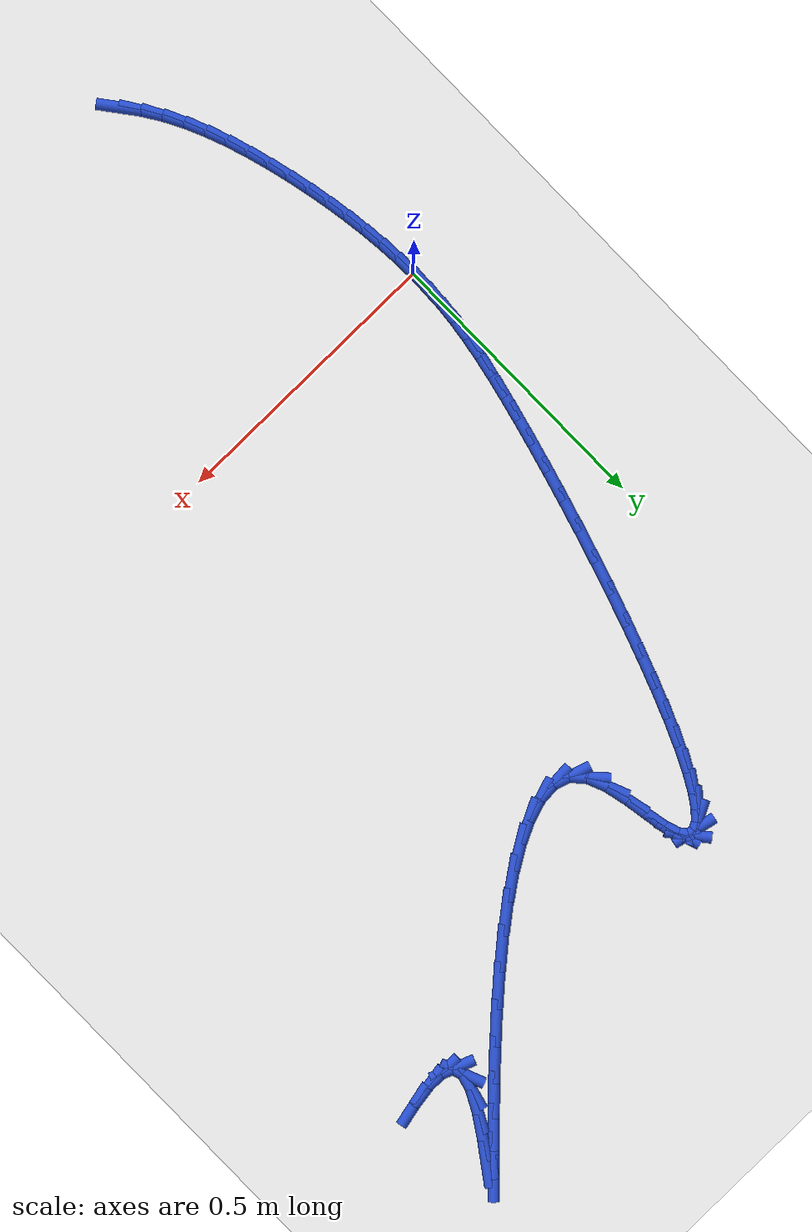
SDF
<sdf version="1.6">
 <world name="default">
  <model name="ground_plane">
   <static>1</static>
   <link name="link">
    <collision name="collision">
     <geometry><plane><normal>0 0 1</normal><size>100 100</size></plane></geometry>
     <surface><friction><ode><mu>100</mu><mu2>50</mu2></ode></friction></surface>
    </collision>
    <visual name="visual">
     <cast_shadows>0</cast_shadows>
     <geometry><plane><normal>0 0 1</normal><size>100 100</size></plane></geometry>
     <material>
      <script><uri>file://media/materials/scripts/gazebo.material</uri><name>Gazebo/WhiteGlow</name></script>
     </material>
    </visual>
   </link>
  </model>
  <model name="line">
   <link name="link_0">
    <pose>-1.1275702593849246e-17 2.7755575615628914e-17 0.01 0 1.57 1.5615434562124908</pose>
    <collision name="collision">
     <geometry><cylinder><radius>0.01</radius><length>0.08</length></cylinder></geometry>
    </collision>
    <visual name="visual">
     <material>
      <script><name>Gazebo/Blue</name><uri>file://media/materials/scripts/gazebo.material</uri></script>
     </material>
     <geometry><cylinder><radius>0.01</radius><length>0.08</length></cylinder></geometry>
    </visual>
   </link>
   <link name="link_1">
    <pose>0.00032071212133747757 0.03465983510457822 0.01 0 1.57 1.5175648516688518</pose>
    <collision name="collision">
     <geometry><cylinder><radius>0.01</radius><length>0.08</length></cylinder></geometry>
    </collision>
    <visual name="visual">
     <material>
      <script><name>Gazebo/Blue</name><uri>file://media/materials/scripts/gazebo.material</uri></script>
     </material>
     <geometry><cylinder><radius>0.01</radius><length>0.08</length></cylinder></geometry>
    </visual>
   </link>
   <link name="link_2">
    <pose>0.0021454302282572194 0.06890638333522675 0.01 0 1.57 1.4738721594035114</pose>
    <collision name="collision">
     <geometry><cylinder><radius>0.01</radius><length>0.08</length></cylinder></geometry>
    </collision>
    <visual name="visual">
     <material>
      <script><name>Gazebo/Blue</name><uri>file://media/materials/scripts/gazebo.material</uri></script>
     </material>
     <geometry><cylinder><radius>0.01</radius><length>0.08</length></cylinder></geometry>
    </visual>
   </link>
   <link name="link_3">
    <pose>0.005502948103826773 0.10343850817212616 0.01 0 1.57 1.4331699964217521</pose>
    <collision name="collision">
     <geometry><cylinder><radius>0.01</radius><length>0.08</length></cylinder></geometry>
    </collision>
    <visual name="visual">
     <material>
      <script><name>Gazebo/Blue</name><uri>file://media/materials/scripts/gazebo.material</uri></script>
     </material>
     <geometry><cylinder><radius>0.01</radius><length>0.08</length></cylinder></geometry>
    </visual>
   </link>
   <link name="link_4">
    <pose>0.010422059531113696 0.13895507309545704 0.01 0 1.57 1.3975631338886407</pose>
    <collision name="collision">
     <geometry><cylinder><radius>0.01</radius><length>0.08</length></cylinder></geometry>
    </collision>
    <visual name="visual">
     <material>
      <script><name>Gazebo/Blue</name><uri>file://media/materials/scripts/gazebo.material</uri></script>
     </material>
     <geometry><cylinder><radius>0.01</radius><length>0.08</length></cylinder></geometry>
    </visual>
   </link>
   <link name="link_5">
    <pose>0.016931558293185545 0.1761549415853999 0.01 0 1.57 1.3682495324275081</pose>
    <collision name="collision">
     <geometry><cylinder><radius>0.01</radius><length>0.08</length></cylinder></geometry>
    </collision>
    <visual name="visual">
     <material>
      <script><name>Gazebo/Blue</name><uri>file://media/materials/scripts/gazebo.material</uri></script>
     </material>
     <geometry><cylinder><radius>0.01</radius><length>0.08</length></cylinder></geometry>
    </visual>
   </link>
   <link name="link_6">
    <pose>0.025060238173109865 0.21573697712213524 0.01 0 1.57 1.3455261808817527</pose>
    <collision name="collision">
     <geometry><cylinder><radius>0.01</radius><length>0.08</length></cylinder></geometry>
    </collision>
    <visual name="visual">
     <material>
      <script><name>Gazebo/Blue</name><uri>file://media/materials/scripts/gazebo.material</uri></script>
     </material>
     <geometry><cylinder><radius>0.01</radius><length>0.08</length></cylinder></geometry>
    </visual>
   </link>
   <link name="link_7">
    <pose>0.034836892953954215 0.2584000431858437 0.01 0 1.57 1.3289492586308602</pose>
    <collision name="collision">
     <geometry><cylinder><radius>0.01</radius><length>0.08</length></cylinder></geometry>
    </collision>
    <visual name="visual">
     <material>
      <script><name>Gazebo/Blue</name><uri>file://media/materials/scripts/gazebo.material</uri></script>
     </material>
     <geometry><cylinder><radius>0.01</radius><length>0.08</length></cylinder></geometry>
    </visual>
   </link>
   <link name="link_8">
    <pose>0.046286000577976216 0.3048137250771371 0.01 0 1.57 1.3162398495861478</pose>
    <collision name="collision">
     <geometry><cylinder><radius>0.01</radius><length>0.08</length></cylinder></geometry>
    </collision>
    <visual name="visual">
     <material>
      <script><name>Gazebo/Blue</name><uri>file://media/materials/scripts/gazebo.material</uri></script>
     </material>
     <geometry><cylinder><radius>0.01</radius><length>0.08</length></cylinder></geometry>
    </visual>
   </link>
   <link name="link_9">
    <pose>0.059326184572193526 0.3549295036266064 0.01 0 1.57 1.3049176117603984</pose>
    <collision name="collision">
     <geometry><cylinder><radius>0.01</radius><length>0.08</length></cylinder></geometry>
    </collision>
    <visual name="visual">
     <material>
      <script><name>Gazebo/Blue</name><uri>file://media/materials/scripts/gazebo.material</uri></script>
     </material>
     <geometry><cylinder><radius>0.01</radius><length>0.08</length></cylinder></geometry>
    </visual>
   </link>
   <link name="link_10">
    <pose>0.07376641805515838 0.4079550036029085 0.01 0 1.57 1.294193274917039</pose>
    <collision name="collision">
     <geometry><cylinder><radius>0.01</radius><length>0.08</length></cylinder></geometry>
    </collision>
    <visual name="visual">
     <material>
      <script><name>Gazebo/Blue</name><uri>file://media/materials/scripts/gazebo.material</uri></script>
     </material>
     <geometry><cylinder><radius>0.01</radius><length>0.08</length></cylinder></geometry>
    </visual>
   </link>
   <link name="link_11">
    <pose>0.0894105988105263 0.4630634192725063 0.01 0 1.57 1.2835333036569392</pose>
    <collision name="collision">
     <geometry><cylinder><radius>0.01</radius><length>0.08</length></cylinder></geometry>
    </collision>
    <visual name="visual">
     <material>
      <script><name>Gazebo/Blue</name><uri>file://media/materials/scripts/gazebo.material</uri></script>
     </material>
     <geometry><cylinder><radius>0.01</radius><length>0.08</length></cylinder></geometry>
    </visual>
   </link>
   <link name="link_12">
    <pose>0.10606262462195287 0.519427944901863 0.01 0 1.57 1.272478453742747</pose>
    <collision name="collision">
     <geometry><cylinder><radius>0.01</radius><length>0.08</length></cylinder></geometry>
    </collision>
    <visual name="visual">
     <material>
      <script><name>Gazebo/Blue</name><uri>file://media/materials/scripts/gazebo.material</uri></script>
     </material>
     <geometry><cylinder><radius>0.01</radius><length>0.08</length></cylinder></geometry>
    </visual>
   </link>
   <link name="link_13">
    <pose>0.12352639327309364 0.5762217747574414 0.01 0 1.57 1.260569366674199</pose>
    <collision name="collision">
     <geometry><cylinder><radius>0.01</radius><length>0.08</length></cylinder></geometry>
    </collision>
    <visual name="visual">
     <material>
      <script><name>Gazebo/Blue</name><uri>file://media/materials/scripts/gazebo.material</uri></script>
     </material>
     <geometry><cylinder><radius>0.01</radius><length>0.08</length></cylinder></geometry>
    </visual>
   </link>
   <link name="link_14">
    <pose>0.14160580254760402 0.6326181031057043 0.01 0 1.57 1.24728058162358</pose>
    <collision name="collision">
     <geometry><cylinder><radius>0.01</radius><length>0.08</length></cylinder></geometry>
    </collision>
    <visual name="visual">
     <material>
      <script><name>Gazebo/Blue</name><uri>file://media/materials/scripts/gazebo.material</uri></script>
     </material>
     <geometry><cylinder><radius>0.01</radius><length>0.08</length></cylinder></geometry>
    </visual>
   </link>
   <link name="link_15">
    <pose>0.16010475022913975 0.6877901242131153 0.01 0 1.57 1.2319418918140035</pose>
    <collision name="collision">
     <geometry><cylinder><radius>0.01</radius><length>0.08</length></cylinder></geometry>
    </collision>
    <visual name="visual">
     <material>
      <script><name>Gazebo/Blue</name><uri>file://media/materials/scripts/gazebo.material</uri></script>
     </material>
     <geometry><cylinder><radius>0.01</radius><length>0.08</length></cylinder></geometry>
    </visual>
   </link>
   <link name="link_16">
    <pose>0.17882713410135623 0.7409110323461364 0.01 0 1.57 1.2136215446589431</pose>
    <collision name="collision">
     <geometry><cylinder><radius>0.01</radius><length>0.08</length></cylinder></geometry>
    </collision>
    <visual name="visual">
     <material>
      <script><name>Gazebo/Blue</name><uri>file://media/materials/scripts/gazebo.material</uri></script>
     </material>
     <geometry><cylinder><radius>0.01</radius><length>0.08</length></cylinder></geometry>
    </visual>
   </link>
   <link name="link_17">
    <pose>0.197576851947909 0.7911540217712314 0.01 0 1.57 1.1909265250723264</pose>
    <collision name="collision">
     <geometry><cylinder><radius>0.01</radius><length>0.08</length></cylinder></geometry>
    </collision>
    <visual name="visual">
     <material>
      <script><name>Gazebo/Blue</name><uri>file://media/materials/scripts/gazebo.material</uri></script>
     </material>
     <geometry><cylinder><radius>0.01</radius><length>0.08</length></cylinder></geometry>
    </visual>
   </link>
   <link name="link_18">
    <pose>0.2161578015524537 0.8376922867548631 0.01 0 1.57 1.16162475773444</pose>
    <collision name="collision">
     <geometry><cylinder><radius>0.01</radius><length>0.08</length></cylinder></geometry>
    </collision>
    <visual name="visual">
     <material>
      <script><name>Gazebo/Blue</name><uri>file://media/materials/scripts/gazebo.material</uri></script>
     </material>
     <geometry><cylinder><radius>0.01</radius><length>0.08</length></cylinder></geometry>
    </visual>
   </link>
   <link name="link_19">
    <pose>0.2343738806986458 0.8796990215634941 0.01 0 1.57 1.1218607726843712</pose>
    <collision name="collision">
     <geometry><cylinder><radius>0.01</radius><length>0.08</length></cylinder></geometry>
    </collision>
    <visual name="visual">
     <material>
      <script><name>Gazebo/Blue</name><uri>file://media/materials/scripts/gazebo.material</uri></script>
     </material>
     <geometry><cylinder><radius>0.01</radius><length>0.08</length></cylinder></geometry>
    </visual>
   </link>
   <link name="link_20">
    <pose>0.2520289871701408 0.9163474204635876 0.01 0 1.57 1.0643502575124055</pose>
    <collision name="collision">
     <geometry><cylinder><radius>0.01</radius><length>0.08</length></cylinder></geometry>
    </collision>
    <visual name="visual">
     <material>
      <script><name>Gazebo/Blue</name><uri>file://media/materials/scripts/gazebo.material</uri></script>
     </material>
     <geometry><cylinder><radius>0.01</radius><length>0.08</length></cylinder></geometry>
    </visual>
   </link>
   <link name="link_21">
    <pose>0.2689270187505943 0.9468106777216067 0.01 0 1.57 0.9736790452168863</pose>
    <collision name="collision">
     <geometry><cylinder><radius>0.01</radius><length>0.08</length></cylinder></geometry>
    </collision>
    <visual name="visual">
     <material>
      <script><name>Gazebo/Blue</name><uri>file://media/materials/scripts/gazebo.material</uri></script>
     </material>
     <geometry><cylinder><radius>0.01</radius><length>0.08</length></cylinder></geometry>
    </visual>
   </link>
   <link name="link_22">
    <pose>0.28487187322366186 0.9702619876040144 0.01 0 1.57 0.8122589101393465</pose>
    <collision name="collision">
     <geometry><cylinder><radius>0.01</radius><length>0.08</length></cylinder></geometry>
    </collision>
    <visual name="visual">
     <material>
      <script><name>Gazebo/Blue</name><uri>file://media/materials/scripts/gazebo.material</uri></script>
     </material>
     <geometry><cylinder><radius>0.01</radius><length>0.08</length></cylinder></geometry>
    </visual>
   </link>
   <link name="link_23">
    <pose>0.29966744837299897 0.9858745443772732 0.01 0 1.57 0.47675871993557756</pose>
    <collision name="collision">
     <geometry><cylinder><radius>0.01</radius><length>0.08</length></cylinder></geometry>
    </collision>
    <visual name="visual">
     <material>
      <script><name>Gazebo/Blue</name><uri>file://media/materials/scripts/gazebo.material</uri></script>
     </material>
     <geometry><cylinder><radius>0.01</radius><length>0.08</length></cylinder></geometry>
    </visual>
   </link>
   <link name="link_24">
    <pose>0.31311764198226116 0.9928215423078464 0.01 0 1.57 -0.21057143866437256</pose>
    <collision name="collision">
     <geometry><cylinder><radius>0.01</radius><length>0.08</length></cylinder></geometry>
    </collision>
    <visual name="visual">
     <material>
      <script><name>Gazebo/Blue</name><uri>file://media/materials/scripts/gazebo.material</uri></script>
     </material>
     <geometry><cylinder><radius>0.01</radius><length>0.08</length></cylinder></geometry>
    </visual>
   </link>
   <link name="link_25">
    <pose>0.32502635183510403 0.9902761756621971 0.01 0 1.57 -0.9017932951318166</pose>
    <collision name="collision">
     <geometry><cylinder><radius>0.01</radius><length>0.08</length></cylinder></geometry>
    </collision>
    <visual name="visual">
     <material>
      <script><name>Gazebo/Blue</name><uri>file://media/materials/scripts/gazebo.material</uri></script>
     </material>
     <geometry><cylinder><radius>0.01</radius><length>0.08</length></cylinder></geometry>
    </visual>
   </link>
   <link name="link_26">
    <pose>0.33519747571518316 0.9774116387067882 0.01 0 1.57 -1.2403026367977674</pose>
    <collision name="collision">
     <geometry><cylinder><radius>0.01</radius><length>0.08</length></cylinder></geometry>
    </collision>
    <visual name="visual">
     <material>
      <script><name>Gazebo/Blue</name><uri>file://media/materials/scripts/gazebo.material</uri></script>
     </material>
     <geometry><cylinder><radius>0.01</radius><length>0.08</length></cylinder></geometry>
    </visual>
   </link>
   <link name="link_27">
    <pose>0.3434349158871429 0.9534011383127101 0.01 0 1.57 -1.3845847862296412</pose>
    <collision name="collision">
     <geometry><cylinder><radius>0.01</radius><length>0.08</length></cylinder></geometry>
    </collision>
    <visual name="visual">
     <material>
      <script><name>Gazebo/Blue</name><uri>file://media/materials/scripts/gazebo.material</uri></script>
     </material>
     <geometry><cylinder><radius>0.01</radius><length>0.08</length></cylinder></geometry>
    </visual>
   </link>
   <link name="link_28">
    <pose>0.34998139979266796 0.9186522579681649 0.01 0 1.57 -1.405711516225509</pose>
    <collision name="collision">
     <geometry><cylinder><radius>0.01</radius><length>0.08</length></cylinder></geometry>
    </collision>
    <visual name="visual">
     <material>
      <script><name>Gazebo/Blue</name><uri>file://media/materials/scripts/gazebo.material</uri></script>
     </material>
     <geometry><cylinder><radius>0.01</radius><length>0.08</length></cylinder></geometry>
    </visual>
   </link>
   <link name="link_29">
    <pose>0.35672204181034156 0.8781924711248926 0.01 0 1.57 -1.3449726657483514</pose>
    <collision name="collision">
     <geometry><cylinder><radius>0.01</radius><length>0.08</length></cylinder></geometry>
    </collision>
    <visual name="visual">
     <material>
      <script><name>Gazebo/Blue</name><uri>file://media/materials/scripts/gazebo.material</uri></script>
     </material>
     <geometry><cylinder><radius>0.01</radius><length>0.08</length></cylinder></geometry>
    </visual>
   </link>
   <link name="link_30">
    <pose>0.36592611855934754 0.8381298658205449 0.01 0 1.57 -1.1771594271546988</pose>
    <collision name="collision">
     <geometry><cylinder><radius>0.01</radius><length>0.08</length></cylinder></geometry>
    </collision>
    <visual name="visual">
     <material>
      <script><name>Gazebo/Blue</name><uri>file://media/materials/scripts/gazebo.material</uri></script>
     </material>
     <geometry><cylinder><radius>0.01</radius><length>0.08</length></cylinder></geometry>
    </visual>
   </link>
   <link name="link_31">
    <pose>0.3798629066588702 0.8045725300927744 0.01 0 1.57 -0.8067428693570016</pose>
    <collision name="collision">
     <geometry><cylinder><radius>0.01</radius><length>0.08</length></cylinder></geometry>
    </collision>
    <visual name="visual">
     <material>
      <script><name>Gazebo/Blue</name><uri>file://media/materials/scripts/gazebo.material</uri></script>
     </material>
     <geometry><cylinder><radius>0.01</radius><length>0.08</length></cylinder></geometry>
    </visual>
   </link>
   <link name="link_32">
    <pose>0.4005323697471649 0.7830013152043961 0.01 0 1.57 -0.3121802786575847</pose>
    <collision name="collision">
     <geometry><cylinder><radius>0.01</radius><length>0.08</length></cylinder></geometry>
    </collision>
    <visual name="visual">
     <material>
      <script><name>Gazebo/Blue</name><uri>file://media/materials/scripts/gazebo.material</uri></script>
     </material>
     <geometry><cylinder><radius>0.01</radius><length>0.08</length></cylinder></geometry>
    </visual>
   </link>
   <link name="link_33">
    <pose>0.42790382237705316 0.774167639106917 0.01 0 1.57 0.0752962812371527</pose>
    <collision name="collision">
     <geometry><cylinder><radius>0.01</radius><length>0.08</length></cylinder></geometry>
    </collision>
    <visual name="visual">
     <material>
      <script><name>Gazebo/Blue</name><uri>file://media/materials/scripts/gazebo.material</uri></script>
     </material>
     <geometry><cylinder><radius>0.01</radius><length>0.08</length></cylinder></geometry>
    </visual>
   </link>
   <link name="link_34">
    <pose>0.461020440954838 0.7766659204788328 0.01 0 1.57 0.3165231054946374</pose>
    <collision name="collision">
     <geometry><cylinder><radius>0.01</radius><length>0.08</length></cylinder></geometry>
    </collision>
    <visual name="visual">
     <material>
      <script><name>Gazebo/Blue</name><uri>file://media/materials/scripts/gazebo.material</uri></script>
     </material>
     <geometry><cylinder><radius>0.01</radius><length>0.08</length></cylinder></geometry>
    </visual>
   </link>
   <link name="link_35">
    <pose>0.49892067936838297 0.7890795791332124 0.01 0 1.57 0.4646307653863084</pose>
    <collision name="collision">
     <geometry><cylinder><radius>0.01</radius><length>0.08</length></cylinder></geometry>
    </collision>
    <visual name="visual">
     <material>
      <script><name>Gazebo/Blue</name><uri>file://media/materials/scripts/gazebo.material</uri></script>
     </material>
     <geometry><cylinder><radius>0.01</radius><length>0.08</length></cylinder></geometry>
    </visual>
   </link>
   <link name="link_36">
    <pose>0.5406429915055511 0.8099920348831242 0.01 0 1.57 0.5606998091053702</pose>
    <collision name="collision">
     <geometry><cylinder><radius>0.01</radius><length>0.08</length></cylinder></geometry>
    </collision>
    <visual name="visual">
     <material>
      <script><name>Gazebo/Blue</name><uri>file://media/materials/scripts/gazebo.material</uri></script>
     </material>
     <geometry><cylinder><radius>0.01</radius><length>0.08</length></cylinder></geometry>
    </visual>
   </link>
   <link name="link_37">
    <pose>0.5852258312542055 0.8379867075416358 0.01 0 1.57 0.6267578541160936</pose>
    <collision name="collision">
     <geometry><cylinder><radius>0.01</radius><length>0.08</length></cylinder></geometry>
    </collision>
    <visual name="visual">
     <material>
      <script><name>Gazebo/Blue</name><uri>file://media/materials/scripts/gazebo.material</uri></script>
     </material>
     <geometry><cylinder><radius>0.01</radius><length>0.08</length></cylinder></geometry>
    </visual>
   </link>
   <link name="link_38">
    <pose>0.6317076525022097 0.8716470169218161 0.01 0 1.57 0.674406016422861</pose>
    <collision name="collision">
     <geometry><cylinder><radius>0.01</radius><length>0.08</length></cylinder></geometry>
    </collision>
    <visual name="visual">
     <material>
      <script><name>Gazebo/Blue</name><uri>file://media/materials/scripts/gazebo.material</uri></script>
     </material>
     <geometry><cylinder><radius>0.01</radius><length>0.08</length></cylinder></geometry>
    </visual>
   </link>
   <link name="link_39">
    <pose>0.6791269091374263 0.9095563828367328 0.01 0 1.57 0.7100528522402593</pose>
    <collision name="collision">
     <geometry><cylinder><radius>0.01</radius><length>0.08</length></cylinder></geometry>
    </collision>
    <visual name="visual">
     <material>
      <script><name>Gazebo/Blue</name><uri>file://media/materials/scripts/gazebo.material</uri></script>
     </material>
     <geometry><cylinder><radius>0.01</radius><length>0.08</length></cylinder></geometry>
    </visual>
   </link>
   <link name="link_40">
    <pose>0.7265220550477194 0.9502982250994547 0.01 0 1.57 0.7374290767563527</pose>
    <collision name="collision">
     <geometry><cylinder><radius>0.01</radius><length>0.08</length></cylinder></geometry>
    </collision>
    <visual name="visual">
     <material>
      <script><name>Gazebo/Blue</name><uri>file://media/materials/scripts/gazebo.material</uri></script>
     </material>
     <geometry><cylinder><radius>0.01</radius><length>0.08</length></cylinder></geometry>
    </visual>
   </link>
   <link name="link_41">
    <pose>0.7729315441209513 0.9924559635230493 0.01 0 1.57 0.7587910834901544</pose>
    <collision name="collision">
     <geometry><cylinder><radius>0.01</radius><length>0.08</length></cylinder></geometry>
    </collision>
    <visual name="visual">
     <material>
      <script><name>Gazebo/Blue</name><uri>file://media/materials/scripts/gazebo.material</uri></script>
     </material>
     <geometry><cylinder><radius>0.01</radius><length>0.08</length></cylinder></geometry>
    </visual>
   </link>
   <link name="link_42">
    <pose>0.817393830244986 1.034613017920586 0.01 0 1.57 0.7755101155539222</pose>
    <collision name="collision">
     <geometry><cylinder><radius>0.01</radius><length>0.08</length></cylinder></geometry>
    </collision>
    <visual name="visual">
     <material>
      <script><name>Gazebo/Blue</name><uri>file://media/materials/scripts/gazebo.material</uri></script>
     </material>
     <geometry><cylinder><radius>0.01</radius><length>0.08</length></cylinder></geometry>
    </visual>
   </link>
   <link name="link_43">
    <pose>0.8589473673076864 1.0753528081051322 0.01 0 1.57 0.7883443949666793</pose>
    <collision name="collision">
     <geometry><cylinder><radius>0.01</radius><length>0.08</length></cylinder></geometry>
    </collision>
    <visual name="visual">
     <material>
      <script><name>Gazebo/Blue</name><uri>file://media/materials/scripts/gazebo.material</uri></script>
     </material>
     <geometry><cylinder><radius>0.01</radius><length>0.08</length></cylinder></geometry>
    </visual>
   </link>
   <link name="link_44">
    <pose>0.8966306091969158 1.1132587538897567 0.01 0 1.57 0.7974883547913829</pose>
    <collision name="collision">
     <geometry><cylinder><radius>0.01</radius><length>0.08</length></cylinder></geometry>
    </collision>
    <visual name="visual">
     <material>
      <script><name>Gazebo/Blue</name><uri>file://media/materials/scripts/gazebo.material</uri></script>
     </material>
     <geometry><cylinder><radius>0.01</radius><length>0.08</length></cylinder></geometry>
    </visual>
   </link>
   <link name="link_45">
    <pose>0.9294820098005373 1.1469142750875272 0.01 0 1.57 0.8023004933216228</pose>
    <collision name="collision">
     <geometry><cylinder><radius>0.01</radius><length>0.08</length></cylinder></geometry>
    </collision>
    <visual name="visual">
     <material>
      <script><name>Gazebo/Blue</name><uri>file://media/materials/scripts/gazebo.material</uri></script>
     </material>
     <geometry><cylinder><radius>0.01</radius><length>0.08</length></cylinder></geometry>
    </visual>
   </link>
   <link name="link_46">
    <pose>0.9565400230064144 1.1749027915115127 0.01 0 1.57 0.8000023377243067</pose>
    <collision name="collision">
     <geometry><cylinder><radius>0.01</radius><length>0.08</length></cylinder></geometry>
    </collision>
    <visual name="visual">
     <material>
      <script><name>Gazebo/Blue</name><uri>file://media/materials/scripts/gazebo.material</uri></script>
     </material>
     <geometry><cylinder><radius>0.01</radius><length>0.08</length></cylinder></geometry>
    </visual>
   </link>
   <link name="link_52">
    <pose>0.9483569779739252 1.1496577816049334 0.01 0 1.57 0.9499174062546217</pose>
    <collision name="collision">
     <geometry><cylinder><radius>0.01</radius><length>0.08</length></cylinder></geometry>
    </collision>
    <visual name="visual">
     <material>
      <script><name>Gazebo/Blue</name><uri>file://media/materials/scripts/gazebo.material</uri></script>
     </material>
     <geometry><cylinder><radius>0.01</radius><length>0.08</length></cylinder></geometry>
    </visual>
   </link>
   <link name="link_53">
    <pose>0.922234461981296 1.113134885917725 0.01 0 1.57 0.9973423143154183</pose>
    <collision name="collision">
     <geometry><cylinder><radius>0.01</radius><length>0.08</length></cylinder></geometry>
    </collision>
    <visual name="visual">
     <material>
      <script><name>Gazebo/Blue</name><uri>file://media/materials/scripts/gazebo.material</uri></script>
     </material>
     <geometry><cylinder><radius>0.01</radius><length>0.08</length></cylinder></geometry>
    </visual>
   </link>
   <link name="link_54">
    <pose>0.8978816847349135 1.0754284756754546 0.01 0 1.57 1.090561967167285</pose>
    <collision name="collision">
     <geometry><cylinder><radius>0.01</radius><length>0.08</length></cylinder></geometry>
    </collision>
    <visual name="visual">
     <material>
      <script><name>Gazebo/Blue</name><uri>file://media/materials/scripts/gazebo.material</uri></script>
     </material>
     <geometry><cylinder><radius>0.01</radius><length>0.08</length></cylinder></geometry>
    </visual>
   </link>
   <link name="link_55">
    <pose>0.8798781035120424 1.040866604949171 0.01 0 1.57 1.315236159343471</pose>
    <collision name="collision">
     <geometry><cylinder><radius>0.01</radius><length>0.08</length></cylinder></geometry>
    </collision>
    <visual name="visual">
     <material>
      <script><name>Gazebo/Blue</name><uri>file://media/materials/scripts/gazebo.material</uri></script>
     </material>
     <geometry><cylinder><radius>0.01</radius><length>0.08</length></cylinder></geometry>
    </visual>
   </link>
   <link name="link_56">
    <pose>0.8727995449216921 1.013774038421928 0.01 0 1.57 -1.1876448813150118</pose>
    <collision name="collision">
     <geometry><cylinder><radius>0.01</radius><length>0.08</length></cylinder></geometry>
    </collision>
    <visual name="visual">
     <material>
      <script><name>Gazebo/Blue</name><uri>file://media/materials/scripts/gazebo.material</uri></script>
     </material>
     <geometry><cylinder><radius>0.01</radius><length>0.08</length></cylinder></geometry>
    </visual>
   </link>
   <link name="link_57">
    <pose>0.8795693819859149 0.9969784166635842 0.01 0 1.57 -0.3724080615252257</pose>
    <collision name="collision">
     <geometry><cylinder><radius>0.01</radius><length>0.08</length></cylinder></geometry>
    </collision>
    <visual name="visual">
     <material>
      <script><name>Gazebo/Blue</name><uri>file://media/materials/scripts/gazebo.material</uri></script>
     </material>
     <geometry><cylinder><radius>0.01</radius><length>0.08</length></cylinder></geometry>
    </visual>
   </link>
   <link name="link_58">
    <pose>0.898849837441317 0.9894467750853193 0.01 0 1.57 0.00287160540675507</pose>
    <collision name="collision">
     <geometry><cylinder><radius>0.01</radius><length>0.08</length></cylinder></geometry>
    </collision>
    <visual name="visual">
     <material>
      <script><name>Gazebo/Blue</name><uri>file://media/materials/scripts/gazebo.material</uri></script>
     </material>
     <geometry><cylinder><radius>0.01</radius><length>0.08</length></cylinder></geometry>
    </visual>
   </link>
   <link name="link_59">
    <pose>0.9286255742738972 0.9895322794872244 0.01 0 1.57 0.15699577477687965</pose>
    <collision name="collision">
     <geometry><cylinder><radius>0.01</radius><length>0.08</length></cylinder></geometry>
    </collision>
    <visual name="visual">
     <material>
      <script><name>Gazebo/Blue</name><uri>file://media/materials/scripts/gazebo.material</uri></script>
     </material>
     <geometry><cylinder><radius>0.01</radius><length>0.08</length></cylinder></geometry>
    </visual>
   </link>
   <link name="link_60">
    <pose>0.9668812554696541 0.9955880956693921 0.01 0 1.57 0.22805591061786093</pose>
    <collision name="collision">
     <geometry><cylinder><radius>0.01</radius><length>0.08</length></cylinder></geometry>
    </collision>
    <visual name="visual">
     <material>
      <script><name>Gazebo/Blue</name><uri>file://media/materials/scripts/gazebo.material</uri></script>
     </material>
     <geometry><cylinder><radius>0.01</radius><length>0.08</length></cylinder></geometry>
    </visual>
   </link>
   <link name="link_205">
    <pose>0.15810435600385908 -0.5398752119170683 0.01 0 1.57 -0.9205636425702517</pose>
    <collision name="collision">
     <geometry><cylinder><radius>0.01</radius><length>0.08</length></cylinder></geometry>
    </collision>
    <visual name="visual">
     <material>
      <script><name>Gazebo/Blue</name><uri>file://media/materials/scripts/gazebo.material</uri></script>
     </material>
     <geometry><cylinder><radius>0.01</radius><length>0.08</length></cylinder></geometry>
    </visual>
   </link>
   <link name="link_206">
    <pose>0.13568444399778778 -0.5103974987799086 0.01 0 1.57 -1.0065743138457608</pose>
    <collision name="collision">
     <geometry><cylinder><radius>0.01</radius><length>0.08</length></cylinder></geometry>
    </collision>
    <visual name="visual">
     <material>
      <script><name>Gazebo/Blue</name><uri>file://media/materials/scripts/gazebo.material</uri></script>
     </material>
     <geometry><cylinder><radius>0.01</radius><length>0.08</length></cylinder></geometry>
    </visual>
   </link>
   <link name="link_207">
    <pose>0.11574691597914429 -0.4788929853727045 0.01 0 1.57 -1.0822747417569685</pose>
    <collision name="collision">
     <geometry><cylinder><radius>0.01</radius><length>0.08</length></cylinder></geometry>
    </collision>
    <visual name="visual">
     <material>
      <script><name>Gazebo/Blue</name><uri>file://media/materials/scripts/gazebo.material</uri></script>
     </material>
     <geometry><cylinder><radius>0.01</radius><length>0.08</length></cylinder></geometry>
    </visual>
   </link>
   <link name="link_208">
    <pose>0.09806602205859939 -0.4456263697837384 0.01 0 1.57 -1.1477940780072857</pose>
    <collision name="collision">
     <geometry><cylinder><radius>0.01</radius><length>0.08</length></cylinder></geometry>
    </collision>
    <visual name="visual">
     <material>
      <script><name>Gazebo/Blue</name><uri>file://media/materials/scripts/gazebo.material</uri></script>
     </material>
     <geometry><cylinder><radius>0.01</radius><length>0.08</length></cylinder></geometry>
    </visual>
   </link>
   <link name="link_209">
    <pose>0.08241601234682235 -0.4108623501012905 0.01 0 1.57 -1.2036229552742255</pose>
    <collision name="collision">
     <geometry><cylinder><radius>0.01</radius><length>0.08</length></cylinder></geometry>
    </collision>
    <visual name="visual">
     <material>
      <script><name>Gazebo/Blue</name><uri>file://media/materials/scripts/gazebo.material</uri></script>
     </material>
     <geometry><cylinder><radius>0.01</radius><length>0.08</length></cylinder></geometry>
    </visual>
   </link>
   <link name="link_210">
    <pose>0.06857113695448291 -0.3748656244136412 0.01 0 1.57 -1.2504119711176664</pose>
    <collision name="collision">
     <geometry><cylinder><radius>0.01</radius><length>0.08</length></cylinder></geometry>
    </collision>
    <visual name="visual">
     <material>
      <script><name>Gazebo/Blue</name><uri>file://media/materials/scripts/gazebo.material</uri></script>
     </material>
     <geometry><cylinder><radius>0.01</radius><length>0.08</length></cylinder></geometry>
    </visual>
   </link>
   <link name="link_211">
    <pose>0.05630564599225096 -0.3379008908090717 0.01 0 1.57 -1.2888297559524708</pose>
    <collision name="collision">
     <geometry><cylinder><radius>0.01</radius><length>0.08</length></cylinder></geometry>
    </collision>
    <visual name="visual">
     <material>
      <script><name>Gazebo/Blue</name><uri>file://media/materials/scripts/gazebo.material</uri></script>
     </material>
     <geometry><cylinder><radius>0.01</radius><length>0.08</length></cylinder></geometry>
    </visual>
   </link>
   <link name="link_212">
    <pose>0.04539378957079595 -0.3002328473758615 0.01 0 1.57 -1.319642704817399</pose>
    <collision name="collision">
     <geometry><cylinder><radius>0.01</radius><length>0.08</length></cylinder></geometry>
    </collision>
    <visual name="visual">
     <material>
      <script><name>Gazebo/Blue</name><uri>file://media/materials/scripts/gazebo.material</uri></script>
     </material>
     <geometry><cylinder><radius>0.01</radius><length>0.08</length></cylinder></geometry>
    </visual>
   </link>
   <link name="link_213">
    <pose>0.03561628550736459 -0.26212448970058183 0.01 0 1.57 -1.346995886154193</pose>
    <collision name="collision">
     <geometry><cylinder><radius>0.01</radius><length>0.08</length></cylinder></geometry>
    </collision>
    <visual name="visual">
     <material>
      <script><name>Gazebo/Blue</name><uri>file://media/materials/scripts/gazebo.material</uri></script>
     </material>
     <geometry><cylinder><radius>0.01</radius><length>0.08</length></cylinder></geometry>
    </visual>
   </link>
   <link name="link_214">
    <pose>0.026893583613714665 -0.22380203155896888 0.01 0 1.57 -1.3748208230310812</pose>
    <collision name="collision">
     <geometry><cylinder><radius>0.01</radius><length>0.08</length></cylinder></geometry>
    </collision>
    <visual name="visual">
     <material>
      <script><name>Gazebo/Blue</name><uri>file://media/materials/scripts/gazebo.material</uri></script>
     </material>
     <geometry><cylinder><radius>0.01</radius><length>0.08</length></cylinder></geometry>
    </visual>
   </link>
   <link name="link_215">
    <pose>0.019281028306889967 -0.18545617826736044 0.01 0 1.57 -1.4036546457432117</pose>
    <collision name="collision">
     <geometry><cylinder><radius>0.01</radius><length>0.08</length></cylinder></geometry>
    </collision>
    <visual name="visual">
     <material>
      <script><name>Gazebo/Blue</name><uri>file://media/materials/scripts/gazebo.material</uri></script>
     </material>
     <geometry><cylinder><radius>0.01</radius><length>0.08</length></cylinder></geometry>
    </visual>
   </link>
   <link name="link_216">
    <pose>0.01283946385617193 -0.14727618740977313 0.01 0 1.57 -1.4339245885778935</pose>
    <collision name="collision">
     <geometry><cylinder><radius>0.01</radius><length>0.08</length></cylinder></geometry>
    </collision>
    <visual name="visual">
     <material>
      <script><name>Gazebo/Blue</name><uri>file://media/materials/scripts/gazebo.material</uri></script>
     </material>
     <geometry><cylinder><radius>0.01</radius><length>0.08</length></cylinder></geometry>
    </visual>
   </link>
   <link name="link_217">
    <pose>0.007629734530842442 -0.10945131657022648 0.01 0 1.57 -1.4661107379397298</pose>
    <collision name="collision">
     <geometry><cylinder><radius>0.01</radius><length>0.08</length></cylinder></geometry>
    </collision>
    <visual name="visual">
     <material>
      <script><name>Gazebo/Blue</name><uri>file://media/materials/scripts/gazebo.material</uri></script>
     </material>
     <geometry><cylinder><radius>0.01</radius><length>0.08</length></cylinder></geometry>
    </visual>
   </link>
   <link name="link_218">
    <pose>0.0037126846001829077 -0.07217082333273714 0.01 0 1.57 -1.5007674792330905</pose>
    <collision name="collision">
     <geometry><cylinder><radius>0.01</radius><length>0.08</length></cylinder></geometry>
    </collision>
    <visual name="visual">
     <material>
      <script><name>Gazebo/Blue</name><uri>file://media/materials/scripts/gazebo.material</uri></script>
     </material>
     <geometry><cylinder><radius>0.01</radius><length>0.08</length></cylinder></geometry>
    </visual>
   </link>
   <link name="link_219">
    <pose>0.0011491583334749013 -0.03562396528132275 0.01 0 1.57 -1.5385494958693744</pose>
    <collision name="collision">
     <geometry><cylinder><radius>0.01</radius><length>0.08</length></cylinder></geometry>
    </collision>
    <visual name="visual">
     <material>
      <script><name>Gazebo/Blue</name><uri>file://media/materials/scripts/gazebo.material</uri></script>
     </material>
     <geometry><cylinder><radius>0.01</radius><length>0.08</length></cylinder></geometry>
    </visual>
   </link>
   <link name="link_220">
    <pose>-8.673617379884035e-18 -6.938893903907228e-17 0.01 0 1.57 1.5613490065260278</pose>
    <collision name="collision">
     <geometry><cylinder><radius>0.01</radius><length>0.08</length></cylinder></geometry>
    </collision>
    <visual name="visual">
     <material>
      <script><name>Gazebo/Blue</name><uri>file://media/materials/scripts/gazebo.material</uri></script>
     </material>
     <geometry><cylinder><radius>0.01</radius><length>0.08</length></cylinder></geometry>
    </visual>
   </link>
   <link name="link_221">
    <pose>0.00032605386903978087 0.03451181492721071 0.01 0 1.57 1.5147848899920884</pose>
    <collision name="collision">
     <geometry><cylinder><radius>0.01</radius><length>0.08</length></cylinder></geometry>
    </collision>
    <visual name="visual">
     <material>
      <script><name>Gazebo/Blue</name><uri>file://media/materials/scripts/gazebo.material</uri></script>
     </material>
     <geometry><cylinder><radius>0.01</radius><length>0.08</length></cylinder></geometry>
    </visual>
   </link>
   <link name="link_222">
    <pose>0.002188164209875879 0.06772222191629534 0.01 0 1.57 1.538496689410643</pose>
    <collision name="collision">
     <geometry><cylinder><radius>0.01</radius><length>0.08</length></cylinder></geometry>
    </collision>
    <visual name="visual">
     <material>
      <script><name>Gazebo/Blue</name><uri>file://media/materials/scripts/gazebo.material</uri></script>
     </material>
     <geometry><cylinder><radius>0.01</radius><length>0.08</length></cylinder></geometry>
    </visual>
   </link>
  </model>
 </world>
</sdf>
